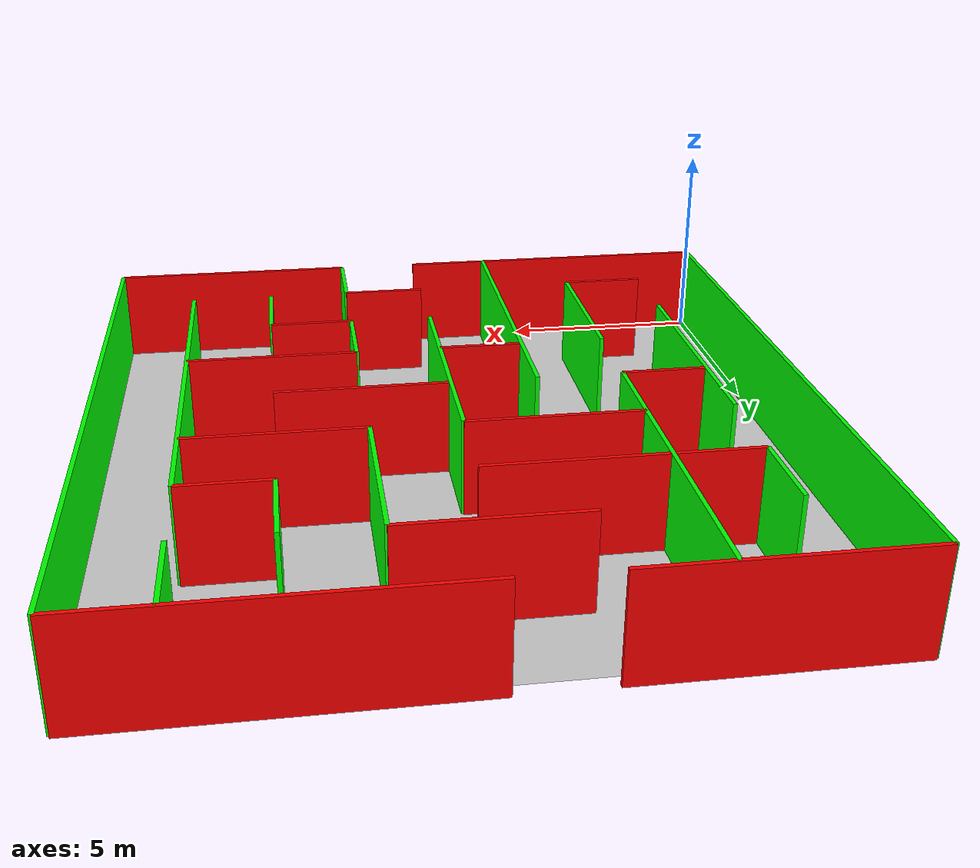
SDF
<?xml version="1.0" ?>
<sdf version="1.6">
  <model name="maze2">
    <static>true</static>
        <link name="floor">
            <pose>8.0 8.0 0 0 0 0</pose>
            <collision name="floor_collision">
                <geometry>
                <plane>
                    <normal>0 0 1</normal>
                    <size>16.0 16.0</size>
                </plane>
                </geometry>
            </collision>
            <visual name="floor_visual">
                <geometry>
                <plane>
                    <normal>0 0 1</normal>
                    <size>16.0 16.0</size>
                </plane>
                </geometry>
            </visual>
        </link>    <link name="wall_0">
      <pose>4.0 0.0 1.0 0 0 0</pose>
      <collision name="wall_0_collision">
        <geometry>
          <box>
            <size>8.0 0.1 2.5</size>
          </box>
        </geometry>
      </collision>
      <visual name="wall_0_visual">
        <geometry>
          <box>
            <size>8.0 0.1 2.5</size>
          </box>
        </geometry>
        <material>
          <ambient>1 0 0 1</ambient>
          <diffuse>1 0 0 1</diffuse>
          <specular>0.1 0.1 0.1 1</specular>
          <emissive>0 0 0 1</emissive>
        </material>
      </visual>
    </link>    <link name="wall_1">
      <pose>13.0 0.0 1.0 0 0 0</pose>
      <collision name="wall_1_collision">
        <geometry>
          <box>
            <size>6.0 0.1 2.5</size>
          </box>
        </geometry>
      </collision>
      <visual name="wall_1_visual">
        <geometry>
          <box>
            <size>6.0 0.1 2.5</size>
          </box>
        </geometry>
        <material>
          <ambient>1 0 0 1</ambient>
          <diffuse>1 0 0 1</diffuse>
          <specular>0.1 0.1 0.1 1</specular>
          <emissive>0 0 0 1</emissive>
        </material>
      </visual>
    </link>    <link name="wall_2">
      <pose>0.0 8.0 1.0 0 0 1.5707963267948966</pose>
      <collision name="wall_2_collision">
        <geometry>
          <box>
            <size>16.0 0.1 2.5</size>
          </box>
        </geometry>
      </collision>
      <visual name="wall_2_visual">
        <geometry>
          <box>
            <size>16.0 0.1 2.5</size>
          </box>
        </geometry>
        <material>
          <ambient>0 1 0 1</ambient>
          <diffuse>0 1 0 1</diffuse>
          <specular>0.1 0.1 0.1 1</specular>
          <emissive>0 0 0 1</emissive>
        </material>
      </visual>
    </link>    <link name="wall_3">
      <pose>16.0 8.0 1.0 0 0 1.5707963267948966</pose>
      <collision name="wall_3_collision">
        <geometry>
          <box>
            <size>16.0 0.1 2.5</size>
          </box>
        </geometry>
      </collision>
      <visual name="wall_3_visual">
        <geometry>
          <box>
            <size>16.0 0.1 2.5</size>
          </box>
        </geometry>
        <material>
          <ambient>0 1 0 1</ambient>
          <diffuse>0 1 0 1</diffuse>
          <specular>0.1 0.1 0.1 1</specular>
          <emissive>0 0 0 1</emissive>
        </material>
      </visual>
    </link>    <link name="wall_4">
      <pose>3.0 16.0 1.0 0 0 0</pose>
      <collision name="wall_4_collision">
        <geometry>
          <box>
            <size>6.0 0.1 2.5</size>
          </box>
        </geometry>
      </collision>
      <visual name="wall_4_visual">
        <geometry>
          <box>
            <size>6.0 0.1 2.5</size>
          </box>
        </geometry>
        <material>
          <ambient>1 0 0 1</ambient>
          <diffuse>1 0 0 1</diffuse>
          <specular>0.1 0.1 0.1 1</specular>
          <emissive>0 0 0 1</emissive>
        </material>
      </visual>
    </link>    <link name="wall_5">
      <pose>12.0 16.0 1.0 0 0 0</pose>
      <collision name="wall_5_collision">
        <geometry>
          <box>
            <size>8.0 0.1 2.5</size>
          </box>
        </geometry>
      </collision>
      <visual name="wall_5_visual">
        <geometry>
          <box>
            <size>8.0 0.1 2.5</size>
          </box>
        </geometry>
        <material>
          <ambient>1 0 0 1</ambient>
          <diffuse>1 0 0 1</diffuse>
          <specular>0.1 0.1 0.1 1</specular>
          <emissive>0 0 0 1</emissive>
        </material>
      </visual>
    </link>    <link name="wall_6">
      <pose>3.0 2.0 1.0 0 0 0</pose>
      <collision name="wall_6_collision">
        <geometry>
          <box>
            <size>2.0 0.1 2.5</size>
          </box>
        </geometry>
      </collision>
      <visual name="wall_6_visual">
        <geometry>
          <box>
            <size>2.0 0.1 2.5</size>
          </box>
        </geometry>
        <material>
          <ambient>1 0 0 1</ambient>
          <diffuse>1 0 0 1</diffuse>
          <specular>0.1 0.1 0.1 1</specular>
          <emissive>0 0 0 1</emissive>
        </material>
      </visual>
    </link>    <link name="wall_7">
      <pose>4.0 4.0 1.0 0 0 1.5707963267948966</pose>
      <collision name="wall_7_collision">
        <geometry>
          <box>
            <size>4.0 0.1 2.5</size>
          </box>
        </geometry>
      </collision>
      <visual name="wall_7_visual">
        <geometry>
          <box>
            <size>4.0 0.1 2.5</size>
          </box>
        </geometry>
        <material>
          <ambient>0 1 0 1</ambient>
          <diffuse>0 1 0 1</diffuse>
          <specular>0.1 0.1 0.1 1</specular>
          <emissive>0 0 0 1</emissive>
        </material>
      </visual>
    </link>    <link name="wall_8">
      <pose>7.0 6.0 1.0 0 0 0</pose>
      <collision name="wall_8_collision">
        <geometry>
          <box>
            <size>2.0 0.1 2.5</size>
          </box>
        </geometry>
      </collision>
      <visual name="wall_8_visual">
        <geometry>
          <box>
            <size>2.0 0.1 2.5</size>
          </box>
        </geometry>
        <material>
          <ambient>1 0 0 1</ambient>
          <diffuse>1 0 0 1</diffuse>
          <specular>0.1 0.1 0.1 1</specular>
          <emissive>0 0 0 1</emissive>
        </material>
      </visual>
    </link>    <link name="wall_9">
      <pose>6.0 4.0 1.0 0 0 1.5707963267948966</pose>
      <collision name="wall_9_collision">
        <geometry>
          <box>
            <size>8.0 0.1 2.5</size>
          </box>
        </geometry>
      </collision>
      <visual name="wall_9_visual">
        <geometry>
          <box>
            <size>8.0 0.1 2.5</size>
          </box>
        </geometry>
        <material>
          <ambient>0 1 0 1</ambient>
          <diffuse>0 1 0 1</diffuse>
          <specular>0.1 0.1 0.1 1</specular>
          <emissive>0 0 0 1</emissive>
        </material>
      </visual>
    </link>    <link name="wall_10">
      <pose>9.0 2.0 1.0 0 0 0</pose>
      <collision name="wall_10_collision">
        <geometry>
          <box>
            <size>2.0 0.1 2.5</size>
          </box>
        </geometry>
      </collision>
      <visual name="wall_10_visual">
        <geometry>
          <box>
            <size>2.0 0.1 2.5</size>
          </box>
        </geometry>
        <material>
          <ambient>1 0 0 1</ambient>
          <diffuse>1 0 0 1</diffuse>
          <specular>0.1 0.1 0.1 1</specular>
          <emissive>0 0 0 1</emissive>
        </material>
      </visual>
    </link>    <link name="wall_11">
      <pose>10.0 1.0 1.0 0 0 1.5707963267948966</pose>
      <collision name="wall_11_collision">
        <geometry>
          <box>
            <size>2.0 0.1 2.5</size>
          </box>
        </geometry>
      </collision>
      <visual name="wall_11_visual">
        <geometry>
          <box>
            <size>2.0 0.1 2.5</size>
          </box>
        </geometry>
        <material>
          <ambient>0 1 0 1</ambient>
          <diffuse>0 1 0 1</diffuse>
          <specular>0.1 0.1 0.1 1</specular>
          <emissive>0 0 0 1</emissive>
        </material>
      </visual>
    </link>    <link name="wall_12">
      <pose>2.0 7.0 1.0 0 0 1.5707963267948966</pose>
      <collision name="wall_12_collision">
        <geometry>
          <box>
            <size>6.0 0.1 2.5</size>
          </box>
        </geometry>
      </collision>
      <visual name="wall_12_visual">
        <geometry>
          <box>
            <size>6.0 0.1 2.5</size>
          </box>
        </geometry>
        <material>
          <ambient>0 1 0 1</ambient>
          <diffuse>0 1 0 1</diffuse>
          <specular>0.1 0.1 0.1 1</specular>
          <emissive>0 0 0 1</emissive>
        </material>
      </visual>
    </link>    <link name="wall_13">
      <pose>3.0 8.0 1.0 0 0 0</pose>
      <collision name="wall_13_collision">
        <geometry>
          <box>
            <size>2.0 0.1 2.5</size>
          </box>
        </geometry>
      </collision>
      <visual name="wall_13_visual">
        <geometry>
          <box>
            <size>2.0 0.1 2.5</size>
          </box>
        </geometry>
        <material>
          <ambient>1 0 0 1</ambient>
          <diffuse>1 0 0 1</diffuse>
          <specular>0.1 0.1 0.1 1</specular>
          <emissive>0 0 0 1</emissive>
        </material>
      </visual>
    </link>    <link name="wall_14">
      <pose>4.0 12.0 1.0 0 0 1.5707963267948966</pose>
      <collision name="wall_14_collision">
        <geometry>
          <box>
            <size>8.0 0.1 2.5</size>
          </box>
        </geometry>
      </collision>
      <visual name="wall_14_visual">
        <geometry>
          <box>
            <size>8.0 0.1 2.5</size>
          </box>
        </geometry>
        <material>
          <ambient>0 1 0 1</ambient>
          <diffuse>0 1 0 1</diffuse>
          <specular>0.1 0.1 0.1 1</specular>
          <emissive>0 0 0 1</emissive>
        </material>
      </visual>
    </link>    <link name="wall_15">
      <pose>2.0 13.0 1.0 0 0 1.5707963267948966</pose>
      <collision name="wall_15_collision">
        <geometry>
          <box>
            <size>2.0 0.1 2.5</size>
          </box>
        </geometry>
      </collision>
      <visual name="wall_15_visual">
        <geometry>
          <box>
            <size>2.0 0.1 2.5</size>
          </box>
        </geometry>
        <material>
          <ambient>0 1 0 1</ambient>
          <diffuse>0 1 0 1</diffuse>
          <specular>0.1 0.1 0.1 1</specular>
          <emissive>0 0 0 1</emissive>
        </material>
      </visual>
    </link>    <link name="wall_16">
      <pose>3.0 12.0 1.0 0 0 0</pose>
      <collision name="wall_16_collision">
        <geometry>
          <box>
            <size>2.0 0.1 2.5</size>
          </box>
        </geometry>
      </collision>
      <visual name="wall_16_visual">
        <geometry>
          <box>
            <size>2.0 0.1 2.5</size>
          </box>
        </geometry>
        <material>
          <ambient>1 0 0 1</ambient>
          <diffuse>1 0 0 1</diffuse>
          <specular>0.1 0.1 0.1 1</specular>
          <emissive>0 0 0 1</emissive>
        </material>
      </visual>
    </link>    <link name="wall_17">
      <pose>6.0 10.0 1.0 0 0 0</pose>
      <collision name="wall_17_collision">
        <geometry>
          <box>
            <size>4.0 0.1 2.5</size>
          </box>
        </geometry>
      </collision>
      <visual name="wall_17_visual">
        <geometry>
          <box>
            <size>4.0 0.1 2.5</size>
          </box>
        </geometry>
        <material>
          <ambient>1 0 0 1</ambient>
          <diffuse>1 0 0 1</diffuse>
          <specular>0.1 0.1 0.1 1</specular>
          <emissive>0 0 0 1</emissive>
        </material>
      </visual>
    </link>    <link name="wall_18">
      <pose>8.0 7.0 1.0 0 0 1.5707963267948966</pose>
      <collision name="wall_18_collision">
        <geometry>
          <box>
            <size>6.0 0.1 2.5</size>
          </box>
        </geometry>
      </collision>
      <visual name="wall_18_visual">
        <geometry>
          <box>
            <size>6.0 0.1 2.5</size>
          </box>
        </geometry>
        <material>
          <ambient>0 1 0 1</ambient>
          <diffuse>0 1 0 1</diffuse>
          <specular>0.1 0.1 0.1 1</specular>
          <emissive>0 0 0 1</emissive>
        </material>
      </visual>
    </link>    <link name="wall_19">
      <pose>10.0 8.0 1.0 0 0 0</pose>
      <collision name="wall_19_collision">
        <geometry>
          <box>
            <size>4.0 0.1 2.5</size>
          </box>
        </geometry>
      </collision>
      <visual name="wall_19_visual">
        <geometry>
          <box>
            <size>4.0 0.1 2.5</size>
          </box>
        </geometry>
        <material>
          <ambient>1 0 0 1</ambient>
          <diffuse>1 0 0 1</diffuse>
          <specular>0.1 0.1 0.1 1</specular>
          <emissive>0 0 0 1</emissive>
        </material>
      </visual>
    </link>    <link name="wall_20">
      <pose>12.0 3.0 1.0 0 0 1.5707963267948966</pose>
      <collision name="wall_20_collision">
        <geometry>
          <box>
            <size>2.0 0.1 2.5</size>
          </box>
        </geometry>
      </collision>
      <visual name="wall_20_visual">
        <geometry>
          <box>
            <size>2.0 0.1 2.5</size>
          </box>
        </geometry>
        <material>
          <ambient>0 1 0 1</ambient>
          <diffuse>0 1 0 1</diffuse>
          <specular>0.1 0.1 0.1 1</specular>
          <emissive>0 0 0 1</emissive>
        </material>
      </visual>
    </link>    <link name="wall_21">
      <pose>11.0 4.0 1.0 0 0 0</pose>
      <collision name="wall_21_collision">
        <geometry>
          <box>
            <size>2.0 0.1 2.5</size>
          </box>
        </geometry>
      </collision>
      <visual name="wall_21_visual">
        <geometry>
          <box>
            <size>2.0 0.1 2.5</size>
          </box>
        </geometry>
        <material>
          <ambient>1 0 0 1</ambient>
          <diffuse>1 0 0 1</diffuse>
          <specular>0.1 0.1 0.1 1</specular>
          <emissive>0 0 0 1</emissive>
        </material>
      </visual>
    </link>    <link name="wall_22">
      <pose>10.0 5.0 1.0 0 0 1.5707963267948966</pose>
      <collision name="wall_22_collision">
        <geometry>
          <box>
            <size>2.0 0.1 2.5</size>
          </box>
        </geometry>
      </collision>
      <visual name="wall_22_visual">
        <geometry>
          <box>
            <size>2.0 0.1 2.5</size>
          </box>
        </geometry>
        <material>
          <ambient>0 1 0 1</ambient>
          <diffuse>0 1 0 1</diffuse>
          <specular>0.1 0.1 0.1 1</specular>
          <emissive>0 0 0 1</emissive>
        </material>
      </visual>
    </link>    <link name="wall_23">
      <pose>12.0 6.0 1.0 0 0 0</pose>
      <collision name="wall_23_collision">
        <geometry>
          <box>
            <size>4.0 0.1 2.5</size>
          </box>
        </geometry>
      </collision>
      <visual name="wall_23_visual">
        <geometry>
          <box>
            <size>4.0 0.1 2.5</size>
          </box>
        </geometry>
        <material>
          <ambient>1 0 0 1</ambient>
          <diffuse>1 0 0 1</diffuse>
          <specular>0.1 0.1 0.1 1</specular>
          <emissive>0 0 0 1</emissive>
        </material>
      </visual>
    </link>    <link name="wall_24">
      <pose>14.0 7.0 1.0 0 0 1.5707963267948966</pose>
      <collision name="wall_24_collision">
        <geometry>
          <box>
            <size>10.0 0.1 2.5</size>
          </box>
        </geometry>
      </collision>
      <visual name="wall_24_visual">
        <geometry>
          <box>
            <size>10.0 0.1 2.5</size>
          </box>
        </geometry>
        <material>
          <ambient>0 1 0 1</ambient>
          <diffuse>0 1 0 1</diffuse>
          <specular>0.1 0.1 0.1 1</specular>
          <emissive>0 0 0 1</emissive>
        </material>
      </visual>
    </link>    <link name="wall_25">
      <pose>13.0 12.0 1.0 0 0 0</pose>
      <collision name="wall_25_collision">
        <geometry>
          <box>
            <size>2.0 0.1 2.5</size>
          </box>
        </geometry>
      </collision>
      <visual name="wall_25_visual">
        <geometry>
          <box>
            <size>2.0 0.1 2.5</size>
          </box>
        </geometry>
        <material>
          <ambient>1 0 0 1</ambient>
          <diffuse>1 0 0 1</diffuse>
          <specular>0.1 0.1 0.1 1</specular>
          <emissive>0 0 0 1</emissive>
        </material>
      </visual>
    </link>    <link name="wall_26">
      <pose>14.0 15.0 1.0 0 0 1.5707963267948966</pose>
      <collision name="wall_26_collision">
        <geometry>
          <box>
            <size>2.0 0.1 2.5</size>
          </box>
        </geometry>
      </collision>
      <visual name="wall_26_visual">
        <geometry>
          <box>
            <size>2.0 0.1 2.5</size>
          </box>
        </geometry>
        <material>
          <ambient>0 1 0 1</ambient>
          <diffuse>0 1 0 1</diffuse>
          <specular>0.1 0.1 0.1 1</specular>
          <emissive>0 0 0 1</emissive>
        </material>
      </visual>
    </link>    <link name="wall_27">
      <pose>10.0 12.0 1.0 0 0 1.5707963267948966</pose>
      <collision name="wall_27_collision">
        <geometry>
          <box>
            <size>4.0 0.1 2.5</size>
          </box>
        </geometry>
      </collision>
      <visual name="wall_27_visual">
        <geometry>
          <box>
            <size>4.0 0.1 2.5</size>
          </box>
        </geometry>
        <material>
          <ambient>0 1 0 1</ambient>
          <diffuse>0 1 0 1</diffuse>
          <specular>0.1 0.1 0.1 1</specular>
          <emissive>0 0 0 1</emissive>
        </material>
      </visual>
    </link>    <link name="wall_28">
      <pose>12.0 10.0 1.0 0 0 0</pose>
      <collision name="wall_28_collision">
        <geometry>
          <box>
            <size>4.0 0.1 2.5</size>
          </box>
        </geometry>
      </collision>
      <visual name="wall_28_visual">
        <geometry>
          <box>
            <size>4.0 0.1 2.5</size>
          </box>
        </geometry>
        <material>
          <ambient>1 0 0 1</ambient>
          <diffuse>1 0 0 1</diffuse>
          <specular>0.1 0.1 0.1 1</specular>
          <emissive>0 0 0 1</emissive>
        </material>
      </visual>
    </link>    <link name="wall_29">
      <pose>6.0 12.0 1.0 0 0 0</pose>
      <collision name="wall_29_collision">
        <geometry>
          <box>
            <size>4.0 0.1 2.5</size>
          </box>
        </geometry>
      </collision>
      <visual name="wall_29_visual">
        <geometry>
          <box>
            <size>4.0 0.1 2.5</size>
          </box>
        </geometry>
        <material>
          <ambient>1 0 0 1</ambient>
          <diffuse>1 0 0 1</diffuse>
          <specular>0.1 0.1 0.1 1</specular>
          <emissive>0 0 0 1</emissive>
        </material>
      </visual>
    </link>    <link name="wall_30">
      <pose>8.0 14.0 1.0 0 0 0</pose>
      <collision name="wall_30_collision">
        <geometry>
          <box>
            <size>4.0 0.1 2.5</size>
          </box>
        </geometry>
      </collision>
      <visual name="wall_30_visual">
        <geometry>
          <box>
            <size>4.0 0.1 2.5</size>
          </box>
        </geometry>
        <material>
          <ambient>1 0 0 1</ambient>
          <diffuse>1 0 0 1</diffuse>
          <specular>0.1 0.1 0.1 1</specular>
          <emissive>0 0 0 1</emissive>
        </material>
      </visual>
    </link>    <link name="wall_31">
      <pose>12.0 13.0 1.0 0 0 1.5707963267948966</pose>
      <collision name="wall_31_collision">
        <geometry>
          <box>
            <size>2.0 0.1 2.5</size>
          </box>
        </geometry>
      </collision>
      <visual name="wall_31_visual">
        <geometry>
          <box>
            <size>2.0 0.1 2.5</size>
          </box>
        </geometry>
        <material>
          <ambient>0 1 0 1</ambient>
          <diffuse>0 1 0 1</diffuse>
          <specular>0.1 0.1 0.1 1</specular>
          <emissive>0 0 0 1</emissive>
        </material>
      </visual>
    </link>
  </model>
</sdf>
